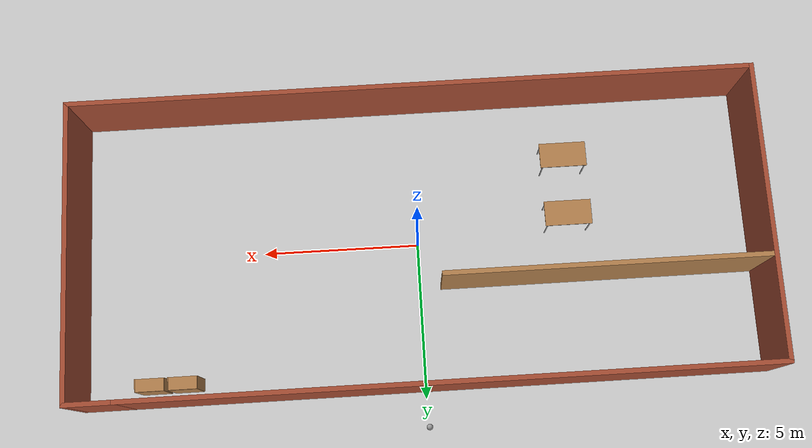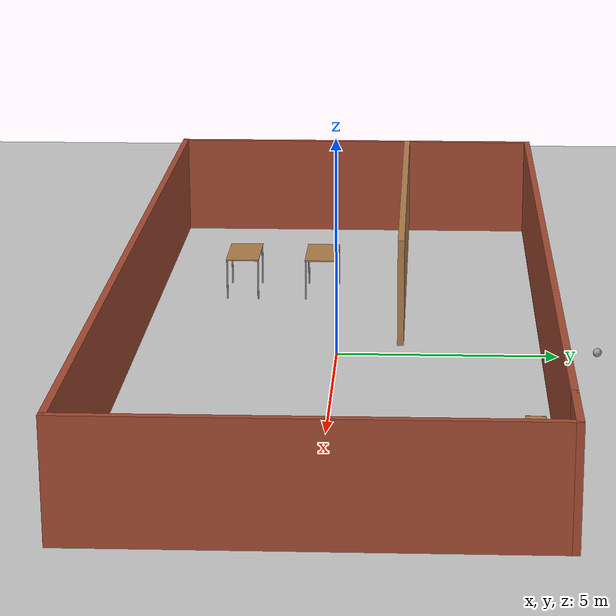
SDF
<sdf version="1.7">
 <world name="default">
  <light name="sun" type="directional">
   <pose>0 0 10 0 -0 0</pose>
   <diffuse>0.8 0.8 0.8 1</diffuse>
   <specular>0.2 0.2 0.2 1</specular>
   <attenuation>
    <range>1000</range>
    <constant>0.9</constant>
    <linear>0.01</linear>
    <quadratic>0.001</quadratic>
   </attenuation>
   <direction>-0.5 0.1 -0.9</direction>
   <spot><inner_angle>0</inner_angle><outer_angle>0</outer_angle><falloff>0</falloff></spot>
  </light>
  <model name="ground_plane">
   <static>1</static>
   <link name="link">
    <collision name="collision">
     <geometry><plane><normal>0 0 1</normal><size>100 100</size></plane></geometry>
     <surface>
      <contact><collide_bitmask>65535</collide_bitmask></contact>
      <friction><ode><mu>100</mu><mu2>50</mu2></ode></friction>
     </surface>
    </collision>
    <visual name="visual">
     <cast_shadows>0</cast_shadows>
     <geometry><plane><normal>0 0 1</normal><size>100 100</size></plane></geometry>
     <material>
      <script><uri>file://media/materials/scripts/gazebo.material</uri><name>Gazebo/Grey</name></script>
     </material>
    </visual>
   </link>
  </model>
  <gravity>0 0 -9.8</gravity>
  <magnetic_field>6e-06 2.3e-05 -4.2e-05</magnetic_field>
  <atmosphere type="adiabatic"/>
  <physics type="ode">
   <max_step_size>0.001</max_step_size>
   <real_time_factor>1</real_time_factor>
   <real_time_update_rate>1000</real_time_update_rate>
  </physics>
  <scene><ambient>0.4 0.4 0.4 1</ambient><background>0.7 0.7 0.7 1</background><shadows>1</shadows></scene>
  <spherical_coordinates>
   <surface_model>EARTH_WGS84</surface_model>
   <latitude_deg>0</latitude_deg>
   <longitude_deg>0</longitude_deg>
   <elevation>0</elevation>
   <heading_deg>0</heading_deg>
  </spherical_coordinates>
  <model name="cafe">
   <pose>-0.046815 0.03334 0 0 -0 0</pose>
   <link name="Wall_10">
    <collision name="Wall_10_Collision">
     <geometry><box><size>21.75 0.15 2.5</size></box></geometry>
     <pose>0 0 1.25 0 -0 0</pose>
    </collision>
    <visual name="Wall_10_Visual">
     <pose>0 0 1.25 0 -0 0</pose>
     <geometry><box><size>21.75 0.15 2.5</size></box></geometry>
     <material>
      <script><uri>file://media/materials/scripts/gazebo.material</uri><name>Gazebo/Bricks</name></script>
      <ambient>1 1 1 1</ambient>
     </material>
     <meta><layer>0</layer></meta>
    </visual>
    <pose>-0 -4.675 0 0 -0 0</pose>
   </link>
   <link name="Wall_11">
    <collision name="Wall_11_Collision">
     <geometry><box><size>9.5 0.15 2.5</size></box></geometry>
     <pose>0 0 1.25 0 -0 0</pose>
    </collision>
    <visual name="Wall_11_Visual">
     <pose>0 0 1.25 0 -0 0</pose>
     <geometry><box><size>9.5 0.15 2.5</size></box></geometry>
     <material>
      <script><uri>file://media/materials/scripts/gazebo.material</uri><name>Gazebo/Bricks</name></script>
      <ambient>1 1 1 1</ambient>
     </material>
     <meta><layer>0</layer></meta>
    </visual>
    <pose>10.8 -0 0 0 -0 1.5708</pose>
   </link>
   <link name="Wall_12">
    <collision name="Wall_12_Collision">
     <geometry><box><size>1.65 0.15 2.5</size></box></geometry>
     <pose>0 0 1.25 0 -0 0</pose>
    </collision>
    <visual name="Wall_12_Visual">
     <pose>0 0 1.25 0 -0 0</pose>
     <geometry><box><size>1.65 0.15 2.5</size></box></geometry>
     <material>
      <script><uri>file://media/materials/scripts/gazebo.material</uri><name>Gazebo/Bricks</name></script>
      <ambient>1 1 1 1</ambient>
     </material>
     <meta><layer>0</layer></meta>
    </visual>
    <pose>10.05 4.675 0 0 -0 3.14159</pose>
   </link>
   <link name="Wall_17">
    <collision name="Wall_17_Collision">
     <geometry><box><size>10.25 0.15 2.5</size></box></geometry>
     <pose>0 0 1.25 0 -0 0</pose>
    </collision>
    <visual name="Wall_17_Visual">
     <pose>0 0 1.25 0 -0 0</pose>
     <geometry><box><size>10.25 0.15 2.5</size></box></geometry>
     <material>
      <script><uri>file://media/materials/scripts/gazebo.material</uri><name>Gazebo/Wood</name></script>
      <ambient>1 1 1 1</ambient>
     </material>
     <meta><layer>0</layer></meta>
    </visual>
    <pose>-5.74783 1.40143 0 0 -0 0</pose>
   </link>
   <link name="Wall_8">
    <collision name="Wall_8_Collision">
     <geometry><box><size>20.25 0.15 2.5</size></box></geometry>
     <pose>0 0 1.25 0 -0 0</pose>
    </collision>
    <visual name="Wall_8_Visual">
     <pose>0 0 1.25 0 -0 0</pose>
     <geometry><box><size>20.25 0.15 2.5</size></box></geometry>
     <material>
      <script><uri>file://media/materials/scripts/gazebo.material</uri><name>Gazebo/Bricks</name></script>
      <ambient>1 1 1 1</ambient>
     </material>
     <meta><layer>0</layer></meta>
    </visual>
    <pose>-0.75 4.675 0 0 -0 3.14159</pose>
   </link>
   <link name="Wall_9">
    <collision name="Wall_9_Collision">
     <geometry><box><size>9.5 0.15 2.5</size></box></geometry>
     <pose>0 0 1.25 0 -0 0</pose>
    </collision>
    <visual name="Wall_9_Visual">
     <pose>0 0 1.25 0 -0 0</pose>
     <geometry><box><size>9.5 0.15 2.5</size></box></geometry>
     <material>
      <script><uri>file://media/materials/scripts/gazebo.material</uri><name>Gazebo/Bricks</name></script>
      <ambient>1 1 1 1</ambient>
     </material>
     <meta><layer>0</layer></meta>
    </visual>
    <pose>-10.8 -0 0 0 -0 -1.5708</pose>
   </link>
   <static>1</static>
  </model>
  <model name="Table">
   <static>1</static>
   <link name="link">
    <collision name="surface">
     <pose>0 0 1 0 -0 0</pose>
     <geometry><box><size>1.5 0.8 0.03</size></box></geometry>
     <surface><friction><ode><mu>0.6</mu><mu2>0.6</mu2></ode></friction></surface>
    </collision>
    <visual name="visual1">
     <pose>0 0 1 0 -0 0</pose>
     <geometry><box><size>1.5 0.8 0.03</size></box></geometry>
     <material>
      <diffuse>1 1 1 1</diffuse>
      <script><uri>file://media/materials/scripts/gazebo.material</uri><name>Gazebo/Wood</name></script>
      <pbr><metal><albedo_map>model://Table/Table_Diffuse.jpg</albedo_map></metal></pbr>
     </material>
    </visual>
    <collision name="front_left_leg">
     <pose>0.68 0.38 0.5 0 -0 0</pose>
     <geometry><cylinder><radius>0.02</radius><length>1</length></cylinder></geometry>
    </collision>
    <visual name="front_left_leg">
     <pose>0.68 0.38 0.5 0 -0 0</pose>
     <geometry><cylinder><radius>0.02</radius><length>1</length></cylinder></geometry>
     <material>
      <diffuse>0.5 0.5 0.5 1</diffuse>
      <script><uri>file://media/materials/scripts/gazebo.material</uri><name>Gazebo/Grey</name></script>
     </material>
    </visual>
    <collision name="front_right_leg">
     <pose>0.68 -0.38 0.5 0 -0 0</pose>
     <geometry><cylinder><radius>0.02</radius><length>1</length></cylinder></geometry>
    </collision>
    <visual name="front_right_leg">
     <pose>0.68 -0.38 0.5 0 -0 0</pose>
     <geometry><cylinder><radius>0.02</radius><length>1</length></cylinder></geometry>
     <material>
      <diffuse>0.5 0.5 0.5 1</diffuse>
      <script><uri>file://media/materials/scripts/gazebo.material</uri><name>Gazebo/Grey</name></script>
     </material>
    </visual>
    <collision name="back_right_leg">
     <pose>-0.68 -0.38 0.5 0 -0 0</pose>
     <geometry><cylinder><radius>0.02</radius><length>1</length></cylinder></geometry>
    </collision>
    <visual name="back_right_leg">
     <pose>-0.68 -0.38 0.5 0 -0 0</pose>
     <geometry><cylinder><radius>0.02</radius><length>1</length></cylinder></geometry>
     <material>
      <diffuse>0.5 0.5 0.5 1</diffuse>
      <script><uri>file://media/materials/scripts/gazebo.material</uri><name>Gazebo/Grey</name></script>
     </material>
    </visual>
    <collision name="back_left_leg">
     <pose>-0.68 0.38 0.5 0 -0 0</pose>
     <geometry><cylinder><radius>0.02</radius><length>1</length></cylinder></geometry>
    </collision>
    <visual name="back_left_leg">
     <pose>-0.68 0.38 0.5 0 -0 0</pose>
     <geometry><cylinder><radius>0.02</radius><length>1</length></cylinder></geometry>
     <material>
      <diffuse>0.5 0.5 0.5 1</diffuse>
      <script><uri>file://media/materials/scripts/gazebo.material</uri><name>Gazebo/Grey</name></script>
     </material>
    </visual>
   </link>
   <pose>-4.87768 -0.574414 0 0 -0 0</pose>
  </model>
  <model name="Table_0">
   <static>1</static>
   <link name="link">
    <collision name="surface">
     <pose>0 0 1 0 -0 0</pose>
     <geometry><box><size>1.5 0.8 0.03</size></box></geometry>
     <surface><friction><ode><mu>0.6</mu><mu2>0.6</mu2></ode></friction></surface>
    </collision>
    <visual name="visual1">
     <pose>0 0 1 0 -0 0</pose>
     <geometry><box><size>1.5 0.8 0.03</size></box></geometry>
     <material>
      <diffuse>1 1 1 1</diffuse>
      <script><uri>file://media/materials/scripts/gazebo.material</uri><name>Gazebo/Wood</name></script>
      <pbr><metal><albedo_map>model://Table/Table_Diffuse.jpg</albedo_map></metal></pbr>
     </material>
    </visual>
    <collision name="front_left_leg">
     <pose>0.68 0.38 0.5 0 -0 0</pose>
     <geometry><cylinder><radius>0.02</radius><length>1</length></cylinder></geometry>
    </collision>
    <visual name="front_left_leg">
     <pose>0.68 0.38 0.5 0 -0 0</pose>
     <geometry><cylinder><radius>0.02</radius><length>1</length></cylinder></geometry>
     <material>
      <diffuse>0.5 0.5 0.5 1</diffuse>
      <script><uri>file://media/materials/scripts/gazebo.material</uri><name>Gazebo/Grey</name></script>
     </material>
    </visual>
    <collision name="front_right_leg">
     <pose>0.68 -0.38 0.5 0 -0 0</pose>
     <geometry><cylinder><radius>0.02</radius><length>1</length></cylinder></geometry>
    </collision>
    <visual name="front_right_leg">
     <pose>0.68 -0.38 0.5 0 -0 0</pose>
     <geometry><cylinder><radius>0.02</radius><length>1</length></cylinder></geometry>
     <material>
      <diffuse>0.5 0.5 0.5 1</diffuse>
      <script><uri>file://media/materials/scripts/gazebo.material</uri><name>Gazebo/Grey</name></script>
     </material>
    </visual>
    <collision name="back_right_leg">
     <pose>-0.68 -0.38 0.5 0 -0 0</pose>
     <geometry><cylinder><radius>0.02</radius><length>1</length></cylinder></geometry>
    </collision>
    <visual name="back_right_leg">
     <pose>-0.68 -0.38 0.5 0 -0 0</pose>
     <geometry><cylinder><radius>0.02</radius><length>1</length></cylinder></geometry>
     <material>
      <diffuse>0.5 0.5 0.5 1</diffuse>
      <script><uri>file://media/materials/scripts/gazebo.material</uri><name>Gazebo/Grey</name></script>
     </material>
    </visual>
    <collision name="back_left_leg">
     <pose>-0.68 0.38 0.5 0 -0 0</pose>
     <geometry><cylinder><radius>0.02</radius><length>1</length></cylinder></geometry>
    </collision>
    <visual name="back_left_leg">
     <pose>-0.68 0.38 0.5 0 -0 0</pose>
     <geometry><cylinder><radius>0.02</radius><length>1</length></cylinder></geometry>
     <material>
      <diffuse>0.5 0.5 0.5 1</diffuse>
      <script><uri>file://media/materials/scripts/gazebo.material</uri><name>Gazebo/Grey</name></script>
     </material>
    </visual>
   </link>
   <pose>-4.87697 -2.51323 0 0 -0 0</pose>
  </model>
  <model name="Bookshelf">
   <static>1</static>
   <link name="link">
    <inertial><mass>1</mass></inertial>
    <collision name="back">
     <pose>0 0.005 0.6 0 -0 0</pose>
     <geometry><box><size>0.9 0.01 1.2</size></box></geometry>
    </collision>
    <visual name="visual1">
     <pose>0 0.005 0.6 0 -0 0</pose>
     <geometry><box><size>0.9 0.01 1.2</size></box></geometry>
     <material>
      <diffuse>1 1 1 1</diffuse>
      <script><uri>file://media/materials/scripts/gazebo.material</uri><name>Gazebo/Wood</name></script>
      <pbr><metal><albedo_map>model://Bookshelf/bookshelf_diffuse.jpg</albedo_map></metal></pbr>
     </material>
    </visual>
    <collision name="left_side">
     <pose>0.45 -0.195 0.6 0 -0 0</pose>
     <geometry><box><size>0.02 0.4 1.2</size></box></geometry>
    </collision>
    <visual name="visual2">
     <pose>0.45 -0.195 0.6 0 -0 0</pose>
     <geometry><box><size>0.02 0.4 1.2</size></box></geometry>
     <material>
      <diffuse>1 1 1 1</diffuse>
      <script><uri>file://media/materials/scripts/gazebo.material</uri><name>Gazebo/Wood</name></script>
      <pbr><metal><albedo_map>model://Bookshelf/bookshelf_diffuse.jpg</albedo_map></metal></pbr>
     </material>
    </visual>
    <collision name="right_side">
     <pose>-0.45 -0.195 0.6 0 -0 0</pose>
     <geometry><box><size>0.02 0.4 1.2</size></box></geometry>
    </collision>
    <visual name="visual3">
     <pose>-0.45 -0.195 0.6 0 -0 0</pose>
     <geometry><box><size>0.02 0.4 1.2</size></box></geometry>
     <material>
      <diffuse>1 1 1 1</diffuse>
      <script><uri>file://media/materials/scripts/gazebo.material</uri><name>Gazebo/Wood</name></script>
      <pbr><metal><albedo_map>model://Bookshelf/bookshelf_diffuse.jpg</albedo_map></metal></pbr>
     </material>
    </visual>
    <collision name="bottom">
     <pose>0 -0.195 0.03 0 -0 0</pose>
     <geometry><box><size>0.88 0.4 0.06</size></box></geometry>
    </collision>
    <visual name="visual4">
     <pose>0 -0.195 0.03 0 -0 0</pose>
     <geometry><box><size>0.88 0.4 0.06</size></box></geometry>
     <material>
      <diffuse>1 1 1 1</diffuse>
      <script><uri>file://media/materials/scripts/gazebo.material</uri><name>Gazebo/Wood</name></script>
      <pbr><metal><albedo_map>model://Bookshelf/bookshelf_diffuse.jpg</albedo_map></metal></pbr>
     </material>
    </visual>
    <collision name="top">
     <pose>0 -0.195 1.19 0 -0 0</pose>
     <geometry><box><size>0.88 0.4 0.02</size></box></geometry>
    </collision>
    <visual name="visual5">
     <pose>0 -0.195 1.19 0 -0 0</pose>
     <geometry><box><size>0.88 0.4 0.02</size></box></geometry>
     <material>
      <diffuse>1 1 1 1</diffuse>
      <script><uri>file://media/materials/scripts/gazebo.material</uri><name>Gazebo/Wood</name></script>
      <pbr><metal><albedo_map>model://Bookshelf/bookshelf_diffuse.jpg</albedo_map></metal></pbr>
     </material>
    </visual>
    <collision name="low_shelf">
     <pose>0 -0.195 0.43 0 -0 0</pose>
     <geometry><box><size>0.88 0.4 0.02</size></box></geometry>
    </collision>
    <visual name="visual6">
     <pose>0 -0.195 0.43 0 -0 0</pose>
     <geometry><box><size>0.88 0.4 0.02</size></box></geometry>
     <material>
      <diffuse>1 1 1 1</diffuse>
      <script><uri>file://media/materials/scripts/gazebo.material</uri><name>Gazebo/Wood</name></script>
      <pbr><metal><albedo_map>model://Bookshelf/bookshelf_diffuse.jpg</albedo_map></metal></pbr>
     </material>
    </visual>
    <collision name="high_shelf">
     <pose>0 -0.195 0.8 0 -0 0</pose>
     <geometry><box><size>0.88 0.4 0.02</size></box></geometry>
    </collision>
    <visual name="visual7">
     <pose>0 -0.195 0.8 0 -0 0</pose>
     <geometry><box><size>0.88 0.4 0.02</size></box></geometry>
     <material>
      <diffuse>1 1 1 1</diffuse>
      <script><uri>file://media/materials/scripts/gazebo.material</uri><name>Gazebo/Wood</name></script>
      <pbr><metal><albedo_map>model://Bookshelf/bookshelf_diffuse.jpg</albedo_map></metal></pbr>
     </material>
    </visual>
   </link>
   <pose>8.52015 4.33796 0 0 -0 0</pose>
  </model>
  <model name="Bookshelf_0">
   <static>1</static>
   <link name="link">
    <inertial><mass>1</mass></inertial>
    <collision name="back">
     <pose>0 0.005 0.6 0 -0 0</pose>
     <geometry><box><size>0.9 0.01 1.2</size></box></geometry>
    </collision>
    <visual name="visual1">
     <pose>0 0.005 0.6 0 -0 0</pose>
     <geometry><box><size>0.9 0.01 1.2</size></box></geometry>
     <material>
      <diffuse>1 1 1 1</diffuse>
      <script><uri>file://media/materials/scripts/gazebo.material</uri><name>Gazebo/Wood</name></script>
      <pbr><metal><albedo_map>model://Bookshelf/bookshelf_diffuse.jpg</albedo_map></metal></pbr>
     </material>
    </visual>
    <collision name="left_side">
     <pose>0.45 -0.195 0.6 0 -0 0</pose>
     <geometry><box><size>0.02 0.4 1.2</size></box></geometry>
    </collision>
    <visual name="visual2">
     <pose>0.45 -0.195 0.6 0 -0 0</pose>
     <geometry><box><size>0.02 0.4 1.2</size></box></geometry>
     <material>
      <diffuse>1 1 1 1</diffuse>
      <script><uri>file://media/materials/scripts/gazebo.material</uri><name>Gazebo/Wood</name></script>
      <pbr><metal><albedo_map>model://Bookshelf/bookshelf_diffuse.jpg</albedo_map></metal></pbr>
     </material>
    </visual>
    <collision name="right_side">
     <pose>-0.45 -0.195 0.6 0 -0 0</pose>
     <geometry><box><size>0.02 0.4 1.2</size></box></geometry>
    </collision>
    <visual name="visual3">
     <pose>-0.45 -0.195 0.6 0 -0 0</pose>
     <geometry><box><size>0.02 0.4 1.2</size></box></geometry>
     <material>
      <diffuse>1 1 1 1</diffuse>
      <script><uri>file://media/materials/scripts/gazebo.material</uri><name>Gazebo/Wood</name></script>
      <pbr><metal><albedo_map>model://Bookshelf/bookshelf_diffuse.jpg</albedo_map></metal></pbr>
     </material>
    </visual>
    <collision name="bottom">
     <pose>0 -0.195 0.03 0 -0 0</pose>
     <geometry><box><size>0.88 0.4 0.06</size></box></geometry>
    </collision>
    <visual name="visual4">
     <pose>0 -0.195 0.03 0 -0 0</pose>
     <geometry><box><size>0.88 0.4 0.06</size></box></geometry>
     <material>
      <diffuse>1 1 1 1</diffuse>
      <script><uri>file://media/materials/scripts/gazebo.material</uri><name>Gazebo/Wood</name></script>
      <pbr><metal><albedo_map>model://Bookshelf/bookshelf_diffuse.jpg</albedo_map></metal></pbr>
     </material>
    </visual>
    <collision name="top">
     <pose>0 -0.195 1.19 0 -0 0</pose>
     <geometry><box><size>0.88 0.4 0.02</size></box></geometry>
    </collision>
    <visual name="visual5">
     <pose>0 -0.195 1.19 0 -0 0</pose>
     <geometry><box><size>0.88 0.4 0.02</size></box></geometry>
     <material>
      <diffuse>1 1 1 1</diffuse>
      <script><uri>file://media/materials/scripts/gazebo.material</uri><name>Gazebo/Wood</name></script>
      <pbr><metal><albedo_map>model://Bookshelf/bookshelf_diffuse.jpg</albedo_map></metal></pbr>
     </material>
    </visual>
    <collision name="low_shelf">
     <pose>0 -0.195 0.43 0 -0 0</pose>
     <geometry><box><size>0.88 0.4 0.02</size></box></geometry>
    </collision>
    <visual name="visual6">
     <pose>0 -0.195 0.43 0 -0 0</pose>
     <geometry><box><size>0.88 0.4 0.02</size></box></geometry>
     <material>
      <diffuse>1 1 1 1</diffuse>
      <script><uri>file://media/materials/scripts/gazebo.material</uri><name>Gazebo/Wood</name></script>
      <pbr><metal><albedo_map>model://Bookshelf/bookshelf_diffuse.jpg</albedo_map></metal></pbr>
     </material>
    </visual>
    <collision name="high_shelf">
     <pose>0 -0.195 0.8 0 -0 0</pose>
     <geometry><box><size>0.88 0.4 0.02</size></box></geometry>
    </collision>
    <visual name="visual7">
     <pose>0 -0.195 0.8 0 -0 0</pose>
     <geometry><box><size>0.88 0.4 0.02</size></box></geometry>
     <material>
      <diffuse>1 1 1 1</diffuse>
      <script><uri>file://media/materials/scripts/gazebo.material</uri><name>Gazebo/Wood</name></script>
      <pbr><metal><albedo_map>model://Bookshelf/bookshelf_diffuse.jpg</albedo_map></metal></pbr>
     </material>
    </visual>
   </link>
   <pose>7.49986 4.33677 0 0 -0 0</pose>
  </model>
  <model name="my_ball">
   <link name="link_0">
    <inertial>
     <mass>1</mass>
     <inertia><ixx>0.1</ixx><ixy>0</ixy><ixz>0</ixz><iyy>0.1</iyy><iyz>0</iyz><izz>0.1</izz></inertia>
    </inertial>
    <visual name="visual">
     <geometry><sphere><radius>0.1</radius></sphere></geometry>
     <material>
      <lighting>1</lighting>
      <script><uri>file://media/materials/scripts/gazebo.material</uri><name>Gazebo/Grey</name></script>
      <shader type="pixel"><normal_map>__default__</normal_map></shader>
      <ambient>1 1 1 1</ambient>
      <diffuse>1 1 1 1</diffuse>
      <specular>1 1 1 1</specular>
      <emissive>1 1 1 1</emissive>
     </material>
    </visual>
    <collision name="collision">
     <geometry><sphere><radius>0.1</radius></sphere></geometry>
     <surface>
      <friction>
       <ode><mu>1</mu><mu2>1</mu2><fdir1>0 0 0</fdir1><slip1>0</slip1><slip2>0</slip2></ode>
       <torsional>
        <coefficient>1</coefficient>
        <patch_radius>0</patch_radius>
        <surface_radius>0</surface_radius>
        <use_patch_radius>1</use_patch_radius>
        <ode><slip>0</slip></ode>
       </torsional>
      </friction>
      <bounce><restitution_coefficient>0</restitution_coefficient><threshold>1e+06</threshold></bounce>
      <contact>
       <collide_without_contact>0</collide_without_contact>
       <collide_without_contact_bitmask>1</collide_without_contact_bitmask>
       <collide_bitmask>1</collide_bitmask>
       <ode>
        <soft_cfm>0</soft_cfm>
        <soft_erp>0.2</soft_erp>
        <kp>1e+13</kp>
        <kd>1</kd>
        <max_vel>0.01</max_vel>
        <min_depth>0</min_depth>
       </ode>
       <bullet>
        <split_impulse>1</split_impulse>
        <split_impulse_penetration_threshold>-0.01</split_impulse_penetration_threshold>
        <soft_cfm>0</soft_cfm>
        <soft_erp>0.2</soft_erp>
        <kp>1e+13</kp>
        <kd>1</kd>
       </bullet>
      </contact>
     </surface>
    </collision>
   </link>
   <static>0</static>
   <pose>-0.040878 5.89655 0.1 0 -0 0</pose>
  </model>
 </world>
</sdf>
